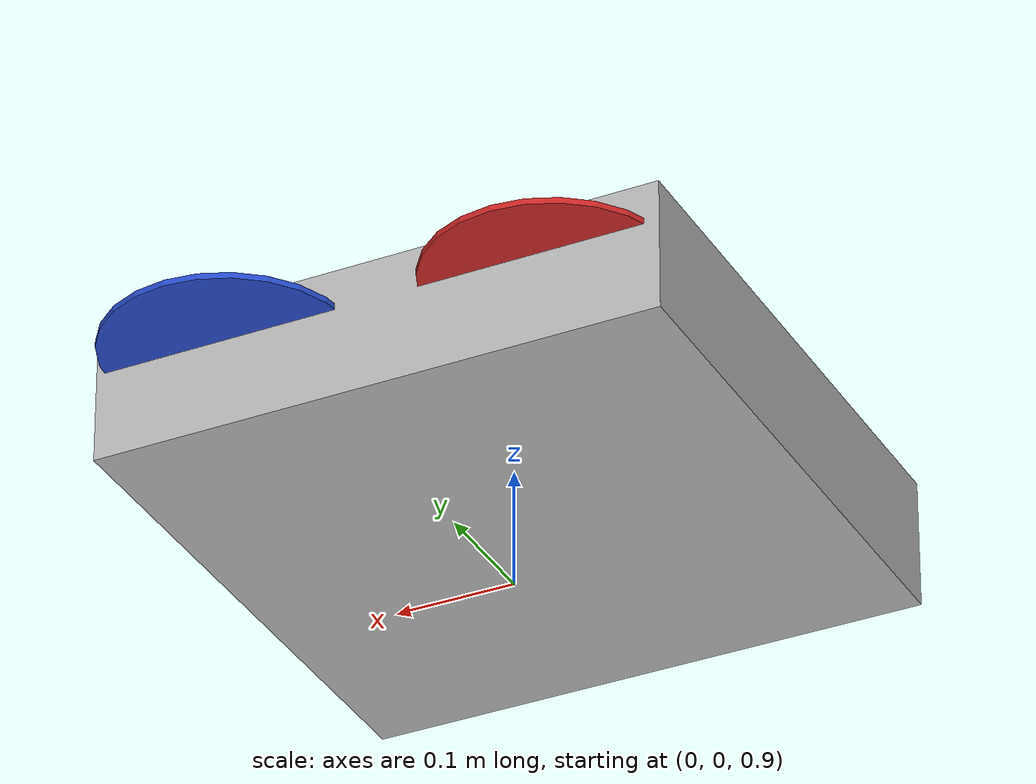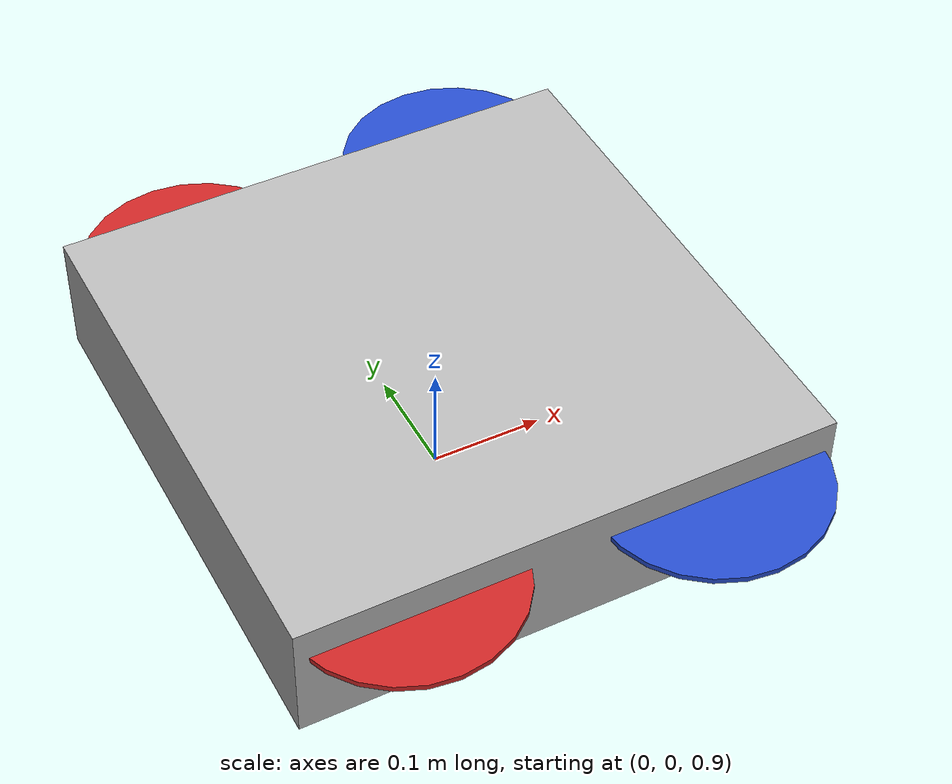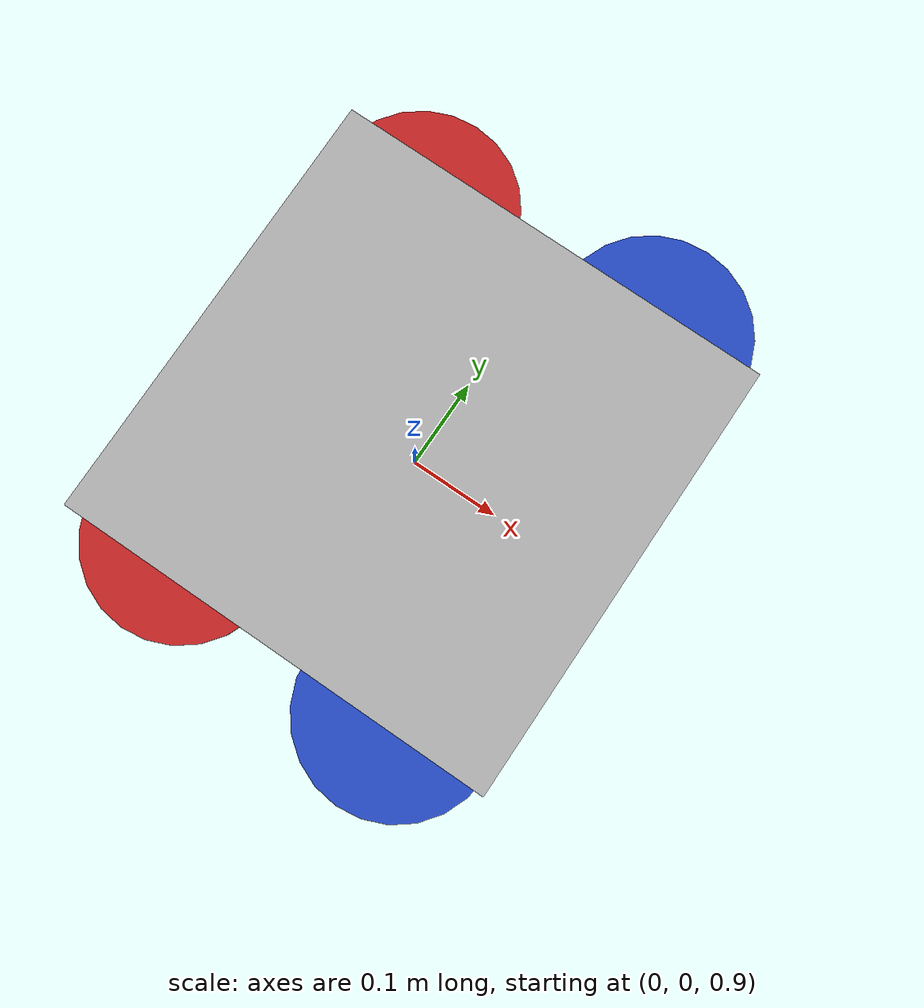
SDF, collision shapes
<?xml version="1.0"?>
<sdf version='1.6'>
  <model name='x3'>
    <pose>0 0 1 0 0 0</pose>

    <!-- LiDAR Frame-->
    <frame name="lidar_frame" attached_to='X3/base_link'>
    <pose>0 0 0.2 0 0 0</pose>
    </frame>

    <link name='X3/base_link'>
      <pose frame=''>0 0 0 0 -0 0</pose>
      <inertial>
        <pose frame=''>0 0 0 0 -0 0</pose>
        <mass>1.5</mass>
        <inertia>
          <ixx>0.0347563</ixx>
          <ixy>0</ixy>
          <ixz>0</ixz>
          <iyy>0.07</iyy>
          <iyz>0</iyz>
          <izz>0.0977</izz>
        </inertia>
      </inertial>
      <collision name='X3/base_link_inertia_collision'>
        <pose frame=''>0 0 0 0 -0 0</pose>
        <geometry>
          <box>
            <size>0.47 0.47 0.11</size>
          </box>
        </geometry>
      </collision>
      <visual name='X3/base_link_inertia_visual'>
        <pose frame=''>0 0 0 0 -0 0</pose>
        <geometry>
          <mesh>
            <scale>1 1 1</scale>
            <uri>model://x3/meshes/x3.dae</uri>
          </mesh>
        </geometry>
      </visual>

    <!-- LiDAR Sensor-->
    <sensor name = 'gpu_lidar' type = 'gpu_lidar'>
    <pose relative_to='lidar_frame'>0 0 0 0 0 0</pose>
    <topic>lidar/x3</topic>
    <update_rate>5</update_rate>
    <ray>
      <scan>
          <horizontal>
              <samples>640</samples>
              <resolution>1</resolution>
              <min_angle>-1.396263</min_angle>
              <max_angle>1.396263</max_angle>
          </horizontal>
          <vertical>
              <samples>1</samples>
              <resolution>0.01</resolution>
              <min_angle>0</min_angle>
              <max_angle>0</max_angle>
          </vertical>
      </scan>
      <range>
          <min>0.08</min>
          <max>10.0</max>
          <resolution>0.01</resolution>
      </range>
  </ray>
  <always_on>1</always_on>
  <visualize>true</visualize>
  </sensor>
    </link>
    <link name='X3/rotor_0'>
      <pose frame=''>0.13 -0.22 0.023 0 -0 0</pose>
      <inertial>
        <pose frame=''>0 0 0 0 -0 0</pose>
        <mass>0.005</mass>
        <inertia>
          <ixx>9.75e-07</ixx>
          <ixy>0</ixy>
          <ixz>0</ixz>
          <iyy>4.17041e-05</iyy>
          <iyz>0</iyz>
          <izz>4.26041e-05</izz>
        </inertia>
      </inertial>
      <collision name='X3/rotor_0_collision'>
        <pose frame=''>0 0 0 0 -0 0</pose>
        <geometry>
          <cylinder>
            <length>0.005</length>
            <radius>0.1</radius>
          </cylinder>
        </geometry>
        <surface>
          <contact>
            <ode/>
          </contact>
          <friction>
            <ode/>
          </friction>
        </surface>
      </collision>
      <visual name='X3/rotor_0_visual'>
        <pose frame=''>0 0 0 0 -0 0</pose>
        <geometry>
          <mesh>
            <scale>0.1 0.1 0.1</scale>
            <uri>model://x3/meshes/propeller_ccw.dae</uri>
          </mesh>
        </geometry>
        <material>
          <script>
            <name>Gazebo/Blue</name>
            <uri>file://media/materials/scripts/gazebo.material</uri>
          </script>
        </material>
      </visual>
      <gravity>1</gravity>
      <velocity_decay/>
    </link>
    <joint name='X3/rotor_0_joint' type='revolute'>
      <child>X3/rotor_0</child>
      <parent>X3/base_link</parent>
      <axis>
        <xyz>0 0 1</xyz>
        <limit>
          <lower>-1e+16</lower>
          <upper>1e+16</upper>
        </limit>
        <dynamics>
          <spring_reference>0</spring_reference>
          <spring_stiffness>0</spring_stiffness>
        </dynamics>
        <use_parent_model_frame>1</use_parent_model_frame>
      </axis>
    </joint>
    <link name='X3/rotor_1'>
      <pose frame=''>-0.13 0.2 0.023 0 -0 0</pose>
      <inertial>
        <pose frame=''>0 0 0 0 -0 0</pose>
        <mass>0.005</mass>
        <inertia>
          <ixx>9.75e-07</ixx>
          <ixy>0</ixy>
          <ixz>0</ixz>
          <iyy>4.17041e-05</iyy>
          <iyz>0</iyz>
          <izz>4.26041e-05</izz>
        </inertia>
      </inertial>
      <collision name='X3/rotor_1_collision'>
        <pose frame=''>0 0 0 0 -0 0</pose>
        <geometry>
          <cylinder>
            <length>0.005</length>
            <radius>0.1</radius>
          </cylinder>
        </geometry>
        <surface>
          <contact>
            <ode/>
          </contact>
          <friction>
            <ode/>
          </friction>
        </surface>
      </collision>
      <visual name='X3/rotor_1_visual'>
        <pose frame=''>0 0 0 0 -0 0</pose>
        <geometry>
          <mesh>
            <scale>0.1 0.1 0.1</scale>
            <uri>model://x3/meshes/propeller_ccw.dae</uri>
          </mesh>
        </geometry>
        <material>
          <script>
            <name>Gazebo/Red</name>
            <uri>file://media/materials/scripts/gazebo.material</uri>
          </script>
        </material>
      </visual>
      <gravity>1</gravity>
      <velocity_decay/>
    </link>
    <joint name='X3/rotor_1_joint' type='revolute'>
      <child>X3/rotor_1</child>
      <parent>X3/base_link</parent>
      <axis>
        <xyz>0 0 1</xyz>
        <limit>
          <lower>-1e+16</lower>
          <upper>1e+16</upper>
        </limit>
        <dynamics>
          <spring_reference>0</spring_reference>
          <spring_stiffness>0</spring_stiffness>
        </dynamics>
        <use_parent_model_frame>1</use_parent_model_frame>
      </axis>
    </joint>
    <link name='X3/rotor_2'>
      <pose frame=''>0.13 0.22 0.023 0 -0 0</pose>
      <inertial>
        <pose frame=''>0 0 0 0 -0 0</pose>
        <mass>0.005</mass>
        <inertia>
          <ixx>9.75e-07</ixx>
          <ixy>0</ixy>
          <ixz>0</ixz>
          <iyy>4.17041e-05</iyy>
          <iyz>0</iyz>
          <izz>4.26041e-05</izz>
        </inertia>
      </inertial>
      <collision name='X3/rotor_2_collision'>
        <pose frame=''>0 0 0 0 -0 0</pose>
        <geometry>
          <cylinder>
            <length>0.005</length>
            <radius>0.1</radius>
          </cylinder>
        </geometry>
        <surface>
          <contact>
            <ode/>
          </contact>
          <friction>
            <ode/>
          </friction>
        </surface>
      </collision>
      <visual name='X3/rotor_2_visual'>
        <pose frame=''>0 0 0 0 -0 0</pose>
        <geometry>
          <mesh>
            <scale>0.1 0.1 0.1</scale>
            <uri>model://x3/meshes/propeller_cw.dae</uri>
          </mesh>
        </geometry>
        <material>
          <script>
            <name>Gazebo/Blue</name>
            <uri>file://media/materials/scripts/gazebo.material</uri>
          </script>
        </material>
      </visual>
      <gravity>1</gravity>
      <velocity_decay/>
    </link>
    <joint name='X3/rotor_2_joint' type='revolute'>
      <child>X3/rotor_2</child>
      <parent>X3/base_link</parent>
      <axis>
        <xyz>0 0 1</xyz>
        <limit>
          <lower>-1e+16</lower>
          <upper>1e+16</upper>
        </limit>
        <dynamics>
          <spring_reference>0</spring_reference>
          <spring_stiffness>0</spring_stiffness>
        </dynamics>
        <use_parent_model_frame>1</use_parent_model_frame>
      </axis>
    </joint>
    <link name='X3/rotor_3'>
      <pose frame=''>-0.13 -0.2 0.023 0 -0 0</pose>
      <inertial>
        <pose frame=''>0 0 0 0 -0 0</pose>
        <mass>0.005</mass>
        <inertia>
          <ixx>9.75e-07</ixx>
          <ixy>0</ixy>
          <ixz>0</ixz>
          <iyy>4.17041e-05</iyy>
          <iyz>0</iyz>
          <izz>4.26041e-05</izz>
        </inertia>
      </inertial>
      <collision name='X3/rotor_3_collision'>
        <pose frame=''>0 0 0 0 -0 0</pose>
        <geometry>
          <cylinder>
            <length>0.005</length>
            <radius>0.1</radius>
          </cylinder>
        </geometry>
        <surface>
          <contact>
            <ode/>
          </contact>
          <friction>
            <ode/>
          </friction>
        </surface>
      </collision>
      <visual name='X3/rotor_3_visual'>
        <pose frame=''>0 0 0 0 -0 0</pose>
        <geometry>
          <mesh>
            <scale>0.1 0.1 0.1</scale>
            <uri>model://x3/meshes/propeller_cw.dae</uri>
          </mesh>
        </geometry>
        <material>
          <script>
            <name>Gazebo/Red</name>
            <uri>file://media/materials/scripts/gazebo.material</uri>
          </script>
        </material>
      </visual>
      <gravity>1</gravity>
      <velocity_decay/>
    </link>
    <joint name='X3/rotor_3_joint' type='revolute'>
      <child>X3/rotor_3</child>
      <parent>X3/base_link</parent>
      <axis>
        <xyz>0 0 1</xyz>
        <limit>
          <lower>-1e+16</lower>
          <upper>1e+16</upper>
        </limit>
        <dynamics>
          <spring_reference>0</spring_reference>
          <spring_stiffness>0</spring_stiffness>
        </dynamics>
        <use_parent_model_frame>1</use_parent_model_frame>
      </axis>
    </joint>
  </model>
</sdf>
